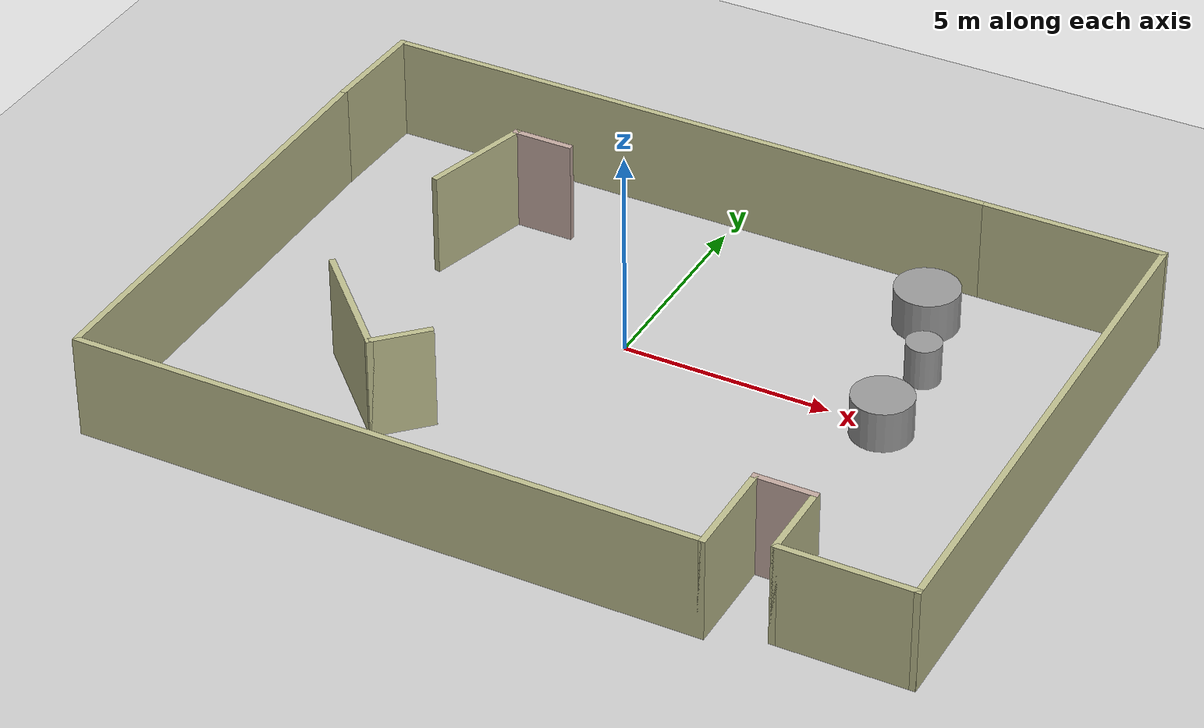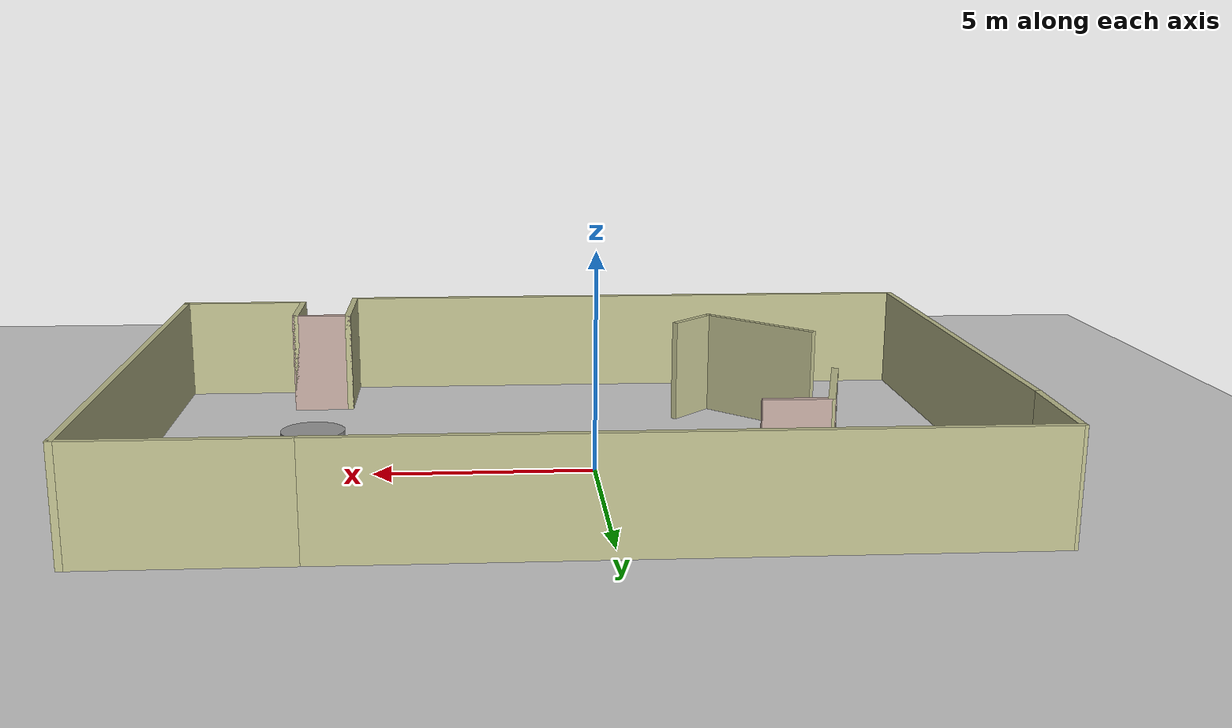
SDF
<sdf version="1.7">
 <world name="default">
  <light name="sun" type="directional">
   <pose>0 0 10 0 -0 0</pose>
   <diffuse>0.8 0.8 0.8 1</diffuse>
   <specular>0.2 0.2 0.2 1</specular>
   <attenuation>
    <range>1000</range>
    <constant>0.9</constant>
    <linear>0.01</linear>
    <quadratic>0.001</quadratic>
   </attenuation>
   <direction>-0.5 0.1 -0.9</direction>
   <spot><inner_angle>0</inner_angle><outer_angle>0</outer_angle><falloff>0</falloff></spot>
  </light>
  <model name="ground_plane">
   <static>1</static>
   <link name="link">
    <collision name="collision">
     <geometry><plane><normal>0 0 1</normal><size>100 100</size></plane></geometry>
     <surface>
      <contact><collide_bitmask>65535</collide_bitmask></contact>
      <friction><ode><mu>100</mu><mu2>50</mu2></ode></friction>
     </surface>
    </collision>
    <visual name="visual">
     <cast_shadows>0</cast_shadows>
     <geometry><plane><normal>0 0 1</normal><size>100 100</size></plane></geometry>
     <material>
      <script><uri>file://media/materials/scripts/gazebo.material</uri><name>Gazebo/Grey</name></script>
     </material>
    </visual>
   </link>
  </model>
  <gravity>0 0 -9.8</gravity>
  <magnetic_field>6e-06 2.3e-05 -4.2e-05</magnetic_field>
  <atmosphere type="adiabatic"/>
  <physics type="ode">
   <max_step_size>0.001</max_step_size>
   <real_time_factor>1</real_time_factor>
   <real_time_update_rate>1000</real_time_update_rate>
  </physics>
  <scene><ambient>0.4 0.4 0.4 1</ambient><background>0.7 0.7 0.7 1</background><shadows>1</shadows></scene>
  <audio><device>default</device></audio>
  <spherical_coordinates>
   <surface_model>EARTH_WGS84</surface_model>
   <latitude_deg>0</latitude_deg>
   <longitude_deg>0</longitude_deg>
   <elevation>0</elevation>
   <heading_deg>0</heading_deg>
  </spherical_coordinates>
  <model name="walls">
   <pose>0.762888 -1.28525 0 0 -0 0</pose>
   <link name="Wall_10">
    <collision name="Wall_10_Collision">
     <geometry><box><size>15 0.15 2.5</size></box></geometry>
     <pose>0 0 1.25 0 -0 0</pose>
    </collision>
    <visual name="Wall_10_Visual">
     <pose>0 0 1.25 0 -0 0</pose>
     <geometry><box><size>15 0.15 2.5</size></box></geometry>
     <material>
      <script><uri>file://media/materials/scripts/gazebo.material</uri><name>Gazebo/Grey</name></script>
      <ambient>0.741176 0.741176 0.556863 1</ambient>
     </material>
     <meta><layer>0</layer></meta>
    </visual>
    <pose>-2.12353 6.79853 0 0 -0 3.14159</pose>
   </link>
   <link name="Wall_11">
    <collision name="Wall_11_Collision">
     <geometry><box><size>2.652 0.15 2.5</size></box></geometry>
     <pose>0 0 1.25 0 -0 0</pose>
    </collision>
    <visual name="Wall_11_Visual">
     <pose>0 0 1.25 0 -0 0</pose>
     <geometry><box><size>2.652 0.15 2.5</size></box></geometry>
     <material>
      <script><uri>file://media/materials/scripts/gazebo.material</uri><name>Gazebo/Grey</name></script>
      <ambient>0.741176 0.741176 0.556863 1</ambient>
     </material>
     <meta><layer>0</layer></meta>
    </visual>
    <pose>-9.59853 5.54853 0 0 -0 -1.61078</pose>
   </link>
   <link name="Wall_13">
    <collision name="Wall_13_Collision">
     <geometry><box><size>3.25 0.15 2.5</size></box></geometry>
     <pose>0 0 1.25 0 -0 0</pose>
    </collision>
    <visual name="Wall_13_Visual">
     <pose>0 0 1.25 0 -0 0</pose>
     <geometry><box><size>3.25 0.15 2.5</size></box></geometry>
     <material>
      <script><uri>file://media/materials/scripts/gazebo.material</uri><name>Gazebo/Grey</name></script>
      <ambient>0.741176 0.741176 0.556863 1</ambient>
     </material>
     <meta><layer>0</layer></meta>
    </visual>
    <pose>-5.21657 -2.91531 0 0 -0 -0.785398</pose>
   </link>
   <link name="Wall_14">
    <collision name="Wall_14_Collision">
     <geometry><box><size>1.5 0.15 2.5</size></box></geometry>
     <pose>0 0 1.25 0 -0 0</pose>
    </collision>
    <visual name="Wall_14_Visual">
     <pose>0 0 1.25 0 -0 0</pose>
     <geometry><box><size>1.5 0.15 2.5</size></box></geometry>
     <material>
      <script><uri>file://media/materials/scripts/gazebo.material</uri><name>Gazebo/Grey</name></script>
      <ambient>0.741176 0.741176 0.556863 1</ambient>
     </material>
     <meta><layer>0</layer></meta>
    </visual>
    <pose>-3.64326 -3.53403 0 0 -0 0.785398</pose>
   </link>
   <link name="Wall_16">
    <collision name="Wall_16_Collision">
     <geometry><box><size>2.75 0.15 2.5</size></box></geometry>
     <pose>0 0 1.25 0 -0 0</pose>
    </collision>
    <visual name="Wall_16_Visual">
     <pose>0 0 1.25 0 -0 0</pose>
     <geometry><box><size>2.75 0.15 2.5</size></box></geometry>
     <material>
      <script><uri>file://media/materials/scripts/gazebo.material</uri><name>Gazebo/Grey</name></script>
      <ambient>0.741176 0.741176 0.556863 1</ambient>
     </material>
     <meta><layer>0</layer></meta>
    </visual>
    <pose>-5.60904 3.35196 0 0 -0 1.309</pose>
   </link>
   <link name="Wall_17">
    <collision name="Wall_17_Collision">
     <geometry><box><size>1.5 0.15 2.5</size></box></geometry>
     <pose>0 0 1.25 0 -0 0</pose>
    </collision>
    <visual name="Wall_17_Visual">
     <pose>0 0 1.25 0 -0 0</pose>
     <geometry><box><size>1.5 0.15 2.5</size></box></geometry>
     <material>
      <script><uri>file://media/materials/scripts/gazebo.material</uri><name>Gazebo/Grey</name></script>
      <ambient>0.760784 0.662745 0.627451 1</ambient>
     </material>
     <meta><layer>0</layer></meta>
    </visual>
    <pose>-4.59758 4.60766 0 0 -0 0</pose>
   </link>
   <link name="Wall_2">
    <collision name="Wall_2_Collision">
     <geometry><box><size>11.25 0.15 2.5</size></box></geometry>
     <pose>0 0 1.25 0 -0 0</pose>
    </collision>
    <visual name="Wall_2_Visual">
     <pose>0 0 1.25 0 -0 0</pose>
     <geometry><box><size>11.25 0.15 2.5</size></box></geometry>
     <material>
      <script><uri>file://media/materials/scripts/gazebo.material</uri><name>Gazebo/Grey</name></script>
      <ambient>0.741176 0.741176 0.556863 1</ambient>
     </material>
     <meta><layer>0</layer></meta>
    </visual>
    <pose>-9.64853 -1.25147 0 0 -0 -1.5708</pose>
   </link>
   <link name="Wall_3">
    <collision name="Wall_3_Collision">
     <geometry><box><size>15 0.15 2.5</size></box></geometry>
     <pose>0 0 1.25 0 -0 0</pose>
    </collision>
    <visual name="Wall_3_Visual">
     <pose>0 0 1.25 0 -0 0</pose>
     <geometry><box><size>15 0.15 2.5</size></box></geometry>
     <material>
      <script><uri>file://media/materials/scripts/gazebo.material</uri><name>Gazebo/Grey</name></script>
      <ambient>0.741176 0.741176 0.556863 1</ambient>
     </material>
     <meta><layer>0</layer></meta>
    </visual>
    <pose>-2.22353 -6.80147 0 0 -0 0</pose>
   </link>
   <link name="Wall_4">
    <collision name="Wall_4_Collision">
     <geometry><box><size>2.5 0.15 2.5</size></box></geometry>
     <pose>0 0 1.25 0 -0 0</pose>
    </collision>
    <visual name="Wall_4_Visual">
     <pose>0 0 1.25 0 -0 0</pose>
     <geometry><box><size>2.5 0.15 2.5</size></box></geometry>
     <material>
      <script><uri>file://media/materials/scripts/gazebo.material</uri><name>Gazebo/Grey</name></script>
      <ambient>0.741176 0.741176 0.556863 1</ambient>
     </material>
     <meta><layer>0</layer></meta>
    </visual>
    <pose>5.20147 -5.62647 0 0 -0 1.5708</pose>
   </link>
   <link name="Wall_5">
    <collision name="Wall_5_Collision">
     <geometry><box><size>1.5 0.15 2.5</size></box></geometry>
     <pose>0 0 1.25 0 -0 0</pose>
    </collision>
    <visual name="Wall_5_Visual">
     <pose>0 0 1.25 0 -0 0</pose>
     <geometry><box><size>1.5 0.15 2.5</size></box></geometry>
     <material>
      <script><uri>file://media/materials/scripts/gazebo.material</uri><name>Gazebo/Grey</name></script>
      <ambient>0.760784 0.662745 0.627451 1</ambient>
     </material>
     <meta><layer>0</layer></meta>
    </visual>
    <pose>5.87647 -4.45147 0 0 -0 0</pose>
   </link>
   <link name="Wall_6">
    <collision name="Wall_6_Collision">
     <geometry><box><size>2 0.15 2.5</size></box></geometry>
     <pose>0 0 1.25 0 -0 0</pose>
    </collision>
    <visual name="Wall_6_Visual">
     <pose>0 0 1.25 0 -0 0</pose>
     <geometry><box><size>2 0.15 2.5</size></box></geometry>
     <material>
      <script><uri>file://media/materials/scripts/gazebo.material</uri><name>Gazebo/Grey</name></script>
      <ambient>0.741176 0.741176 0.556863 1</ambient>
     </material>
     <meta><layer>0</layer></meta>
    </visual>
    <pose>6.55147 -5.37647 0 0 -0 -1.5708</pose>
   </link>
   <link name="Wall_7">
    <collision name="Wall_7_Collision">
     <geometry><box><size>3.25 0.15 2.5</size></box></geometry>
     <pose>0 0 1.25 0 -0 0</pose>
    </collision>
    <visual name="Wall_7_Visual">
     <pose>0 0 1.25 0 -0 0</pose>
     <geometry><box><size>3.25 0.15 2.5</size></box></geometry>
     <material>
      <script><uri>file://media/materials/scripts/gazebo.material</uri><name>Gazebo/Grey</name></script>
      <ambient>0.741176 0.741176 0.556863 1</ambient>
     </material>
     <meta><layer>0</layer></meta>
    </visual>
    <pose>8.10147 -6.30147 0 0 -0 0</pose>
   </link>
   <link name="Wall_8">
    <collision name="Wall_8_Collision">
     <geometry><box><size>13.25 0.15 2.5</size></box></geometry>
     <pose>0 0 1.25 0 -0 0</pose>
    </collision>
    <visual name="Wall_8_Visual">
     <pose>0 0 1.25 0 -0 0</pose>
     <geometry><box><size>13.25 0.15 2.5</size></box></geometry>
     <material>
      <script><uri>file://media/materials/scripts/gazebo.material</uri><name>Gazebo/Grey</name></script>
      <ambient>0.741176 0.741176 0.556863 1</ambient>
     </material>
     <meta><layer>0</layer></meta>
    </visual>
    <pose>9.65147 0.248531 0 0 -0 1.5708</pose>
   </link>
   <link name="Wall_9">
    <collision name="Wall_9_Collision">
     <geometry><box><size>4.5 0.15 2.5</size></box></geometry>
     <pose>0 0 1.25 0 -0 0</pose>
    </collision>
    <visual name="Wall_9_Visual">
     <pose>0 0 1.25 0 -0 0</pose>
     <geometry><box><size>4.5 0.15 2.5</size></box></geometry>
     <material>
      <script><uri>file://media/materials/scripts/gazebo.material</uri><name>Gazebo/Grey</name></script>
      <ambient>0.741176 0.741176 0.556863 1</ambient>
     </material>
     <meta><layer>0</layer></meta>
    </visual>
    <pose>7.47647 6.79853 0 0 -0 3.14159</pose>
   </link>
   <static>1</static>
  </model>
  <model name="unit_cylinder">
   <pose>5.5335 3.96324 0.5 0 -0 0</pose>
   <link name="link">
    <inertial>
     <mass>1</mass>
     <inertia><ixx>0.145833</ixx><ixy>0</ixy><ixz>0</ixz><iyy>0.145833</iyy><iyz>0</iyz><izz>0.125</izz></inertia>
    </inertial>
    <collision name="collision">
     <geometry><cylinder><radius>0.76876</radius><length>1</length></cylinder></geometry>
    </collision>
    <visual name="visual">
     <geometry><cylinder><radius>0.76876</radius><length>1</length></cylinder></geometry>
     <material>
      <script><name>Gazebo/Grey</name><uri>file://media/materials/scripts/gazebo.material</uri></script>
     </material>
    </visual>
   </link>
  </model>
  <model name="unit_cylinder_clone">
   <pose>6.31403 2.02177 0.5 0 -0 0</pose>
   <link name="link">
    <inertial>
     <mass>1</mass>
     <inertia><ixx>0.145833</ixx><ixy>0</ixy><ixz>0</ixz><iyy>0.145833</iyy><iyz>0</iyz><izz>0.125</izz></inertia>
    </inertial>
    <collision name="collision">
     <geometry><cylinder><radius>0.414936</radius><length>1</length></cylinder></geometry>
    </collision>
    <visual name="visual">
     <geometry><cylinder><radius>0.414936</radius><length>1</length></cylinder></geometry>
     <material>
      <script><name>Gazebo/Grey</name><uri>file://media/materials/scripts/gazebo.material</uri></script>
     </material>
    </visual>
   </link>
  </model>
  <model name="unit_cylinder_clone_0">
   <pose>6.32905 -0.179898 0.5 0 -0 0</pose>
   <link name="link">
    <inertial>
     <mass>1</mass>
     <inertia><ixx>0.145833</ixx><ixy>0</ixy><ixz>0</ixz><iyy>0.145833</iyy><iyz>0</iyz><izz>0.125</izz></inertia>
    </inertial>
    <collision name="collision">
     <geometry><cylinder><radius>0.717935</radius><length>1</length></cylinder></geometry>
    </collision>
    <visual name="visual">
     <geometry><cylinder><radius>0.717935</radius><length>1</length></cylinder></geometry>
     <material>
      <script><name>Gazebo/Grey</name><uri>file://media/materials/scripts/gazebo.material</uri></script>
     </material>
    </visual>
   </link>
  </model>
 </world>
</sdf>
